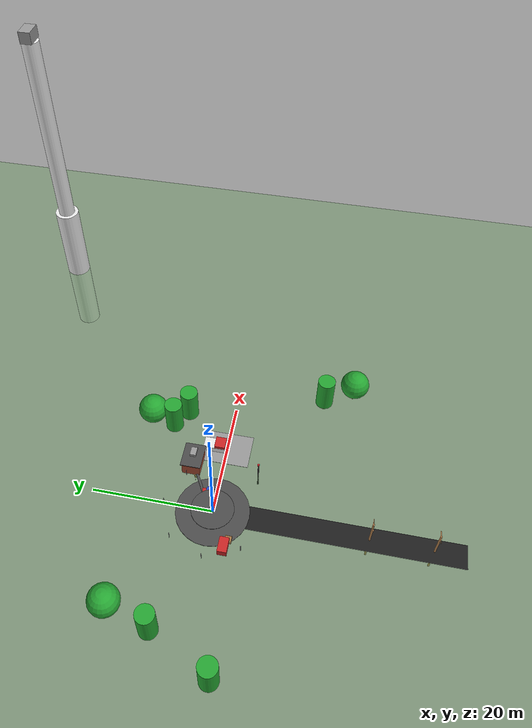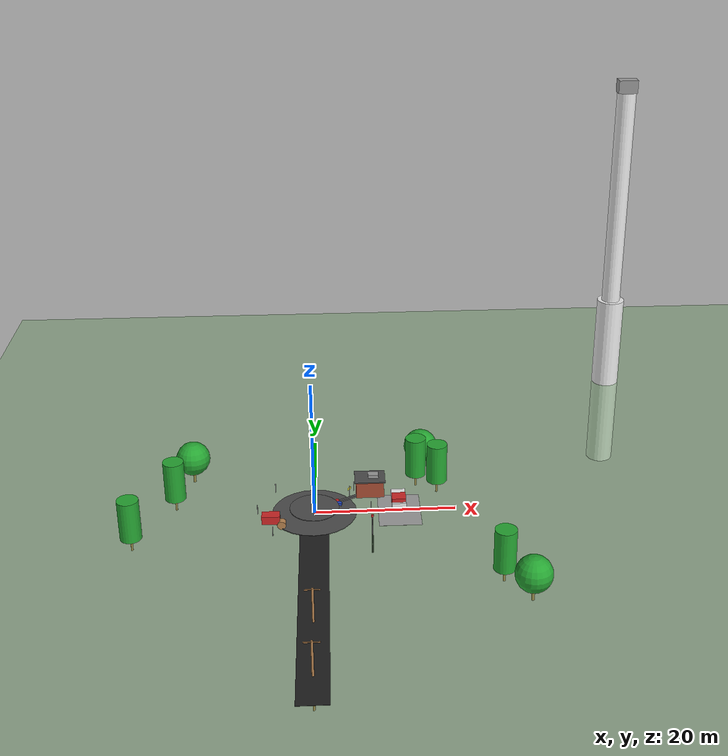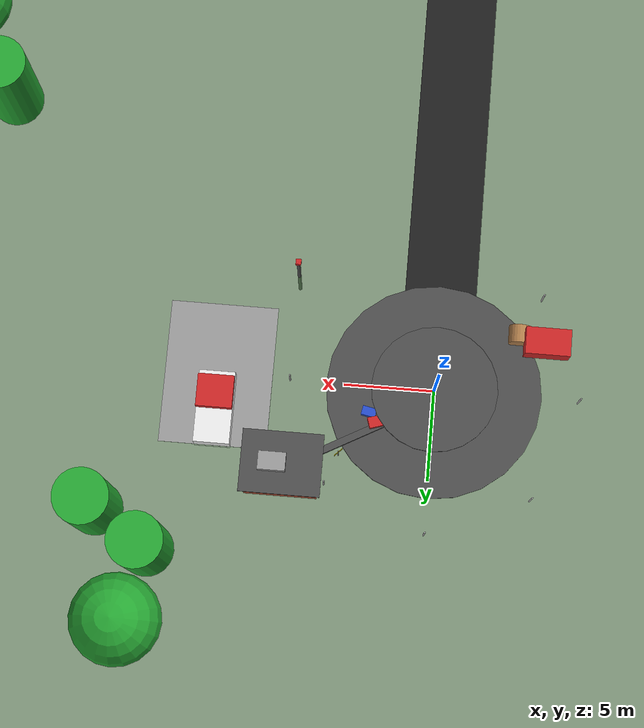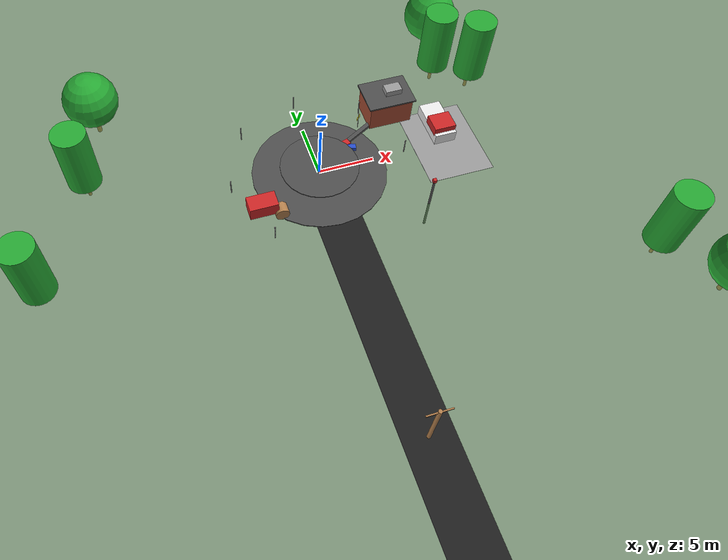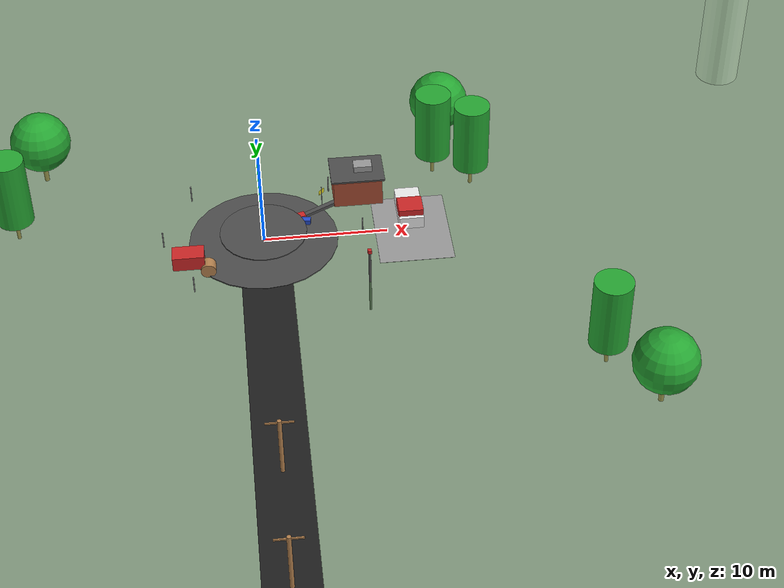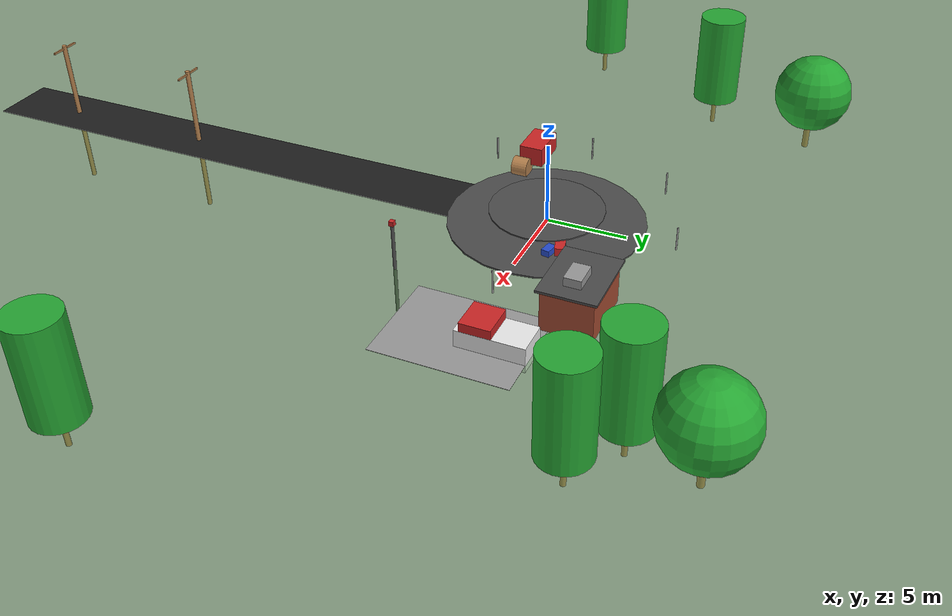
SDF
<sdf version='1.7'>
  <world name='default'>
    <light name='sun' type='directional'>
      <cast_shadows>1</cast_shadows>
      <pose>0 0 1000 0 -0 0</pose>
      <diffuse>0.8 0.8 0.8 1</diffuse>
      <specular>0.5 0.5 0.5 1</specular>
      <attenuation>
        <range>1000</range>
        <constant>0.9</constant>
        <linear>0.01</linear>
        <quadratic>0.001</quadratic>
      </attenuation>
      <direction>-0.5 0.1 -0.9</direction>
    </light>

    <!-- ============ BASE GROUND ============ -->
    <model name='ground_plane'>
      <static>1</static>
      <link name='link'>
        <collision name='collision'>
          <geometry><plane><normal>0 0 1</normal><size>200 200</size></plane></geometry>
          <surface>
            <friction><ode><mu>100</mu><mu2>50</mu2></ode></friction>
            <contact><ode/></contact>
          </surface>
          <max_contacts>10</max_contacts>
        </collision>
        <visual name='visual'>
          <cast_shadows>0</cast_shadows>
          <geometry><plane><normal>0 0 1</normal><size>200 200</size></plane></geometry>
          <material>
            <script><uri>file://media/materials/scripts/gazebo.material</uri><name>Gazebo/Grass</name></script>
          </material>
        </visual>
      </link>
    </model>

    <!-- ============ CONCRETE FOUNDATION PAD ============ -->
    <model name='concrete_foundation'>
      <static>1</static>
      <pose>0 0 0.005 0 0 0</pose>
      <link name='pad'>
        <collision name='c'><geometry><cylinder><radius>6</radius><length>0.1</length></cylinder></geometry></collision>
        <visual name='v'><geometry><cylinder><radius>6</radius><length>0.1</length></cylinder></geometry><material><script><uri>file://media/materials/scripts/gazebo.material</uri><name>Gazebo/DarkGrey</name></script></material></visual>
      </link>
    </model>

    <!-- ============ MAINTENANCE PLATFORM (raised steel grating around tower base) ============ -->
    <model name='maintenance_platform'>
      <static>1</static>
      <pose>0 0 0.8 0 0 0</pose>
      <link name='deck'>
        <collision name='c'><geometry><cylinder><radius>3.5</radius><length>0.08</length></cylinder></geometry></collision>
        <visual name='v'><geometry><cylinder><radius>3.5</radius><length>0.08</length></cylinder></geometry><material><script><uri>file://media/materials/scripts/gazebo.material</uri><name>Gazebo/DarkGrey</name></script></material></visual>
      </link>
    </model>

    <!-- ============ ACCESS ROAD (south) ============ -->
    <model name='access_road'>
      <static>1</static>
      <pose>0 -20 0.003 0 0 0</pose>
      <link name='road'>
        <collision name='collision'>
          <geometry><box><size>4 40 0.05</size></box></geometry>
        </collision>
        <visual name='visual'>
          <geometry><box><size>4 40 0.05</size></box></geometry>
          <material>
            <script><uri>file://media/materials/scripts/gazebo.material</uri><name>Gazebo/FlatBlack</name></script>
          </material>
        </visual>
      </link>
    </model>

    <!-- Road dashed center lines -->
    <model name='road_marking_1'>
      <static>1</static>
      <pose>0 -5 0.008 0 0 0</pose>
      <link name='m'><visual name='v'><geometry><box><size>0.15 3 0.01</size></box></geometry><material><script><uri>file://media/materials/scripts/gazebo.material</uri><name>Gazebo/Yellow</name></script></material></visual></link>
    </model>
    <model name='road_marking_2'>
      <static>1</static>
      <pose>0 -15 0.008 0 0 0</pose>
      <link name='m'><visual name='v'><geometry><box><size>0.15 3 0.01</size></box></geometry><material><script><uri>file://media/materials/scripts/gazebo.material</uri><name>Gazebo/Yellow</name></script></material></visual></link>
    </model>
    <model name='road_marking_3'>
      <static>1</static>
      <pose>0 -30 0.008 0 0 0</pose>
      <link name='m'><visual name='v'><geometry><box><size>0.15 3 0.01</size></box></geometry><material><script><uri>file://media/materials/scripts/gazebo.material</uri><name>Gazebo/Yellow</name></script></material></visual></link>
    </model>

    <!-- ============ TRANSFORMER BUILDING (northeast) ============ -->
    <model name='transformer_building'>
      <static>1</static>
      <pose>8 5 1.25 0 0 0</pose>
      <link name='body'>
        <collision name='c'><geometry><box><size>4 3 2.5</size></box></geometry></collision>
        <visual name='v'><geometry><box><size>4 3 2.5</size></box></geometry><material><script><uri>file://media/materials/scripts/gazebo.material</uri><name>Gazebo/Bricks</name></script></material></visual>
      </link>
    </model>
    <model name='transformer_roof'>
      <static>1</static>
      <pose>8 5 2.55 0 0 0</pose>
      <link name='r'>
        <collision name='c'><geometry><box><size>4.4 3.4 0.15</size></box></geometry></collision>
        <visual name='v'><geometry><box><size>4.4 3.4 0.15</size></box></geometry><material><script><uri>file://media/materials/scripts/gazebo.material</uri><name>Gazebo/DarkGrey</name></script></material></visual>
      </link>
    </model>
    <model name='transformer_hvac'>
      <static>1</static>
      <pose>8.5 5 2.85 0 0 0</pose>
      <link name='h'>
        <collision name='c'><geometry><box><size>1.5 1 0.6</size></box></geometry></collision>
        <visual name='v'><geometry><box><size>1.5 1 0.6</size></box></geometry><material><script><uri>file://media/materials/scripts/gazebo.material</uri><name>Gazebo/Grey</name></script></material></visual>
      </link>
    </model>

    <!-- Cable conduit from transformer to tower -->
    <model name='cable_conduit'>
      <static>1</static>
      <pose>3.5 2.5 0.15 0 0 0.5</pose>
      <link name='c'>
        <collision name='c'><geometry><box><size>6 0.4 0.3</size></box></geometry></collision>
        <visual name='v'><geometry><box><size>6 0.4 0.3</size></box></geometry><material><script><uri>file://media/materials/scripts/gazebo.material</uri><name>Gazebo/DarkGrey</name></script></material></visual>
      </link>
    </model>

    <!-- ============ PERIMETER FENCE ============ -->
    <model name='fence_post_1'>
      <static>1</static><pose>8 0 0.75 0 0 0</pose>
      <link name='p'><collision name='c'><geometry><cylinder><radius>0.05</radius><length>1.5</length></cylinder></geometry></collision><visual name='v'><geometry><cylinder><radius>0.05</radius><length>1.5</length></cylinder></geometry><material><script><uri>file://media/materials/scripts/gazebo.material</uri><name>Gazebo/Grey</name></script></material></visual></link>
    </model>
    <model name='fence_post_2'>
      <static>1</static><pose>5.66 5.66 0.75 0 0 0</pose>
      <link name='p'><collision name='c'><geometry><cylinder><radius>0.05</radius><length>1.5</length></cylinder></geometry></collision><visual name='v'><geometry><cylinder><radius>0.05</radius><length>1.5</length></cylinder></geometry><material><script><uri>file://media/materials/scripts/gazebo.material</uri><name>Gazebo/Grey</name></script></material></visual></link>
    </model>
    <model name='fence_post_3'>
      <static>1</static><pose>0 8 0.75 0 0 0</pose>
      <link name='p'><collision name='c'><geometry><cylinder><radius>0.05</radius><length>1.5</length></cylinder></geometry></collision><visual name='v'><geometry><cylinder><radius>0.05</radius><length>1.5</length></cylinder></geometry><material><script><uri>file://media/materials/scripts/gazebo.material</uri><name>Gazebo/Grey</name></script></material></visual></link>
    </model>
    <model name='fence_post_4'>
      <static>1</static><pose>-5.66 5.66 0.75 0 0 0</pose>
      <link name='p'><collision name='c'><geometry><cylinder><radius>0.05</radius><length>1.5</length></cylinder></geometry></collision><visual name='v'><geometry><cylinder><radius>0.05</radius><length>1.5</length></cylinder></geometry><material><script><uri>file://media/materials/scripts/gazebo.material</uri><name>Gazebo/Grey</name></script></material></visual></link>
    </model>
    <model name='fence_post_5'>
      <static>1</static><pose>-8 0 0.75 0 0 0</pose>
      <link name='p'><collision name='c'><geometry><cylinder><radius>0.05</radius><length>1.5</length></cylinder></geometry></collision><visual name='v'><geometry><cylinder><radius>0.05</radius><length>1.5</length></cylinder></geometry><material><script><uri>file://media/materials/scripts/gazebo.material</uri><name>Gazebo/Grey</name></script></material></visual></link>
    </model>
    <model name='fence_post_6'>
      <static>1</static><pose>-5.66 -5.66 0.75 0 0 0</pose>
      <link name='p'><collision name='c'><geometry><cylinder><radius>0.05</radius><length>1.5</length></cylinder></geometry></collision><visual name='v'><geometry><cylinder><radius>0.05</radius><length>1.5</length></cylinder></geometry><material><script><uri>file://media/materials/scripts/gazebo.material</uri><name>Gazebo/Grey</name></script></material></visual></link>
    </model>

    <!-- ============ WARNING SIGN ============ -->
    <model name='warning_sign'>
      <static>1</static>
      <pose>5 4 0.9 0 0 0.785</pose>
      <link name='post'>
        <collision name='c'><geometry><cylinder><radius>0.03</radius><length>1.8</length></cylinder></geometry></collision>
        <visual name='v'><geometry><cylinder><radius>0.03</radius><length>1.8</length></cylinder></geometry><material><script><uri>file://media/materials/scripts/gazebo.material</uri><name>Gazebo/Grey</name></script></material></visual>
      </link>
      <link name='board'>
        <pose>0 0 0.4 0 0 0</pose>
        <collision name='c'><geometry><box><size>0.6 0.02 0.4</size></box></geometry></collision>
        <visual name='v'><geometry><box><size>0.6 0.02 0.4</size></box></geometry><material><script><uri>file://media/materials/scripts/gazebo.material</uri><name>Gazebo/Yellow</name></script></material></visual>
      </link>
    </model>

    <!-- ============ STORAGE CONTAINER (northwest) ============ -->
    <model name='storage_container'>
      <static>1</static>
      <pose>-6 -3 1.2 0 0 0</pose>
      <link name='box'>
        <collision name='c'><geometry><box><size>2.5 1.5 1.2</size></box></geometry></collision>
        <visual name='v'><geometry><box><size>2.5 1.5 1.2</size></box></geometry><material><script><uri>file://media/materials/scripts/gazebo.material</uri><name>Gazebo/Red</name></script></material></visual>
      </link>
    </model>
    <model name='cable_spool'>
      <static>1</static>
      <pose>-4.5 -3.5 0.5 1.57 0 0</pose>
      <link name='s'>
        <collision name='c'><geometry><cylinder><radius>0.6</radius><length>1.0</length></cylinder></geometry></collision>
        <visual name='v'><geometry><cylinder><radius>0.6</radius><length>1.0</length></cylinder></geometry><material><script><uri>file://media/materials/scripts/gazebo.material</uri><name>Gazebo/Wood</name></script></material></visual>
      </link>
    </model>

    <!-- ============ PARKING AREA + VEHICLE (east) ============ -->
    <model name='parking_area'>
      <static>1</static>
      <pose>12 0 0.002 0 0 0</pose>
      <link name='gravel'>
        <visual name='v'><geometry><box><size>6 8 0.02</size></box></geometry><material><script><uri>file://media/materials/scripts/gazebo.material</uri><name>Gazebo/Grey</name></script></material></visual>
      </link>
    </model>

    <!-- Simplified truck (inline box geometry, no network download) -->
    <model name='maintenance_truck'>
      <static>1</static>
      <pose>12 2 0.3 0 0 -1.57</pose>
      <link name='body'>
        <collision name='c'><geometry><box><size>4 2 1.5</size></box></geometry></collision>
        <visual name='v'><geometry><box><size>4 2 1.5</size></box></geometry><material><script><uri>file://media/materials/scripts/gazebo.material</uri><name>Gazebo/White</name></script></material></visual>
      </link>
      <link name='cab'>
        <pose>0.8 0 0.9 0 0 0</pose>
        <collision name='c'><geometry><box><size>1.8 2 0.8</size></box></geometry></collision>
        <visual name='v'><geometry><box><size>1.8 2 0.8</size></box></geometry><material><script><uri>file://media/materials/scripts/gazebo.material</uri><name>Gazebo/Red</name></script></material></visual>
      </link>
    </model>

    <!-- ============ TOOLBOXES ============ -->
    <model name='toolbox_1'>
      <static>1</static>
      <pose>3 2 0.4 0 0 0.3</pose>
      <link name='b'><collision name='c'><geometry><box><size>1.0 0.6 0.5</size></box></geometry></collision><visual name='v'><geometry><box><size>1.0 0.6 0.5</size></box></geometry><material><script><uri>file://media/materials/scripts/gazebo.material</uri><name>Gazebo/Red</name></script></material></visual></link>
    </model>
    <model name='toolbox_2'>
      <static>1</static>
      <pose>3.5 1.5 0.4 0 0 -0.2</pose>
      <link name='b'><collision name='c'><geometry><box><size>0.8 0.5 0.4</size></box></geometry></collision><visual name='v'><geometry><box><size>0.8 0.5 0.4</size></box></geometry><material><script><uri>file://media/materials/scripts/gazebo.material</uri><name>Gazebo/Blue</name></script></material></visual></link>
    </model>

    <!-- ============ WARNING LIGHT POLE (southeast) ============ -->
    <model name='warning_light_pole'>
      <static>1</static>
      <pose>8 -6 0 0 0 0</pose>
      <link name='pole'>
        <collision name='c'><geometry><cylinder><radius>0.1</radius><length>6</length></cylinder></geometry></collision>
        <visual name='v'><geometry><cylinder><radius>0.1</radius><length>6</length></cylinder></geometry><material><script><uri>file://media/materials/scripts/gazebo.material</uri><name>Gazebo/DarkGrey</name></script></material></visual>
      </link>
      <link name='light'>
        <pose>0 0 3 0 0 0</pose>
        <collision name='c'><geometry><box><size>0.3 0.3 0.3</size></box></geometry></collision>
        <visual name='v'><geometry><box><size>0.3 0.3 0.3</size></box></geometry><material><script><uri>file://media/materials/scripts/gazebo.material</uri><name>Gazebo/Red</name></script></material></visual>
      </link>
    </model>

    <!-- ============ SECOND WIND TURBINE (southeast, ~64m) ============ -->
    <model name='turbine2_tower_base'>
      <static>1</static><pose>50 40 0 0 0 0</pose>
      <link name='t'><collision name='c'><geometry><cylinder><radius>2.2</radius><length>30</length></cylinder></geometry></collision><visual name='v'><geometry><cylinder><radius>2.2</radius><length>30</length></cylinder></geometry><material><script><uri>file://media/materials/scripts/gazebo.material</uri><name>Gazebo/White</name></script></material></visual></link>
    </model>
    <model name='turbine2_tower_top'>
      <static>1</static><pose>50 40 30 0 0 0</pose>
      <link name='t'><collision name='c'><geometry><cylinder><radius>1.5</radius><length>40</length></cylinder></geometry></collision><visual name='v'><geometry><cylinder><radius>1.5</radius><length>40</length></cylinder></geometry><material><script><uri>file://media/materials/scripts/gazebo.material</uri><name>Gazebo/White</name></script></material></visual></link>
    </model>
    <model name='turbine2_nacelle'>
      <static>1</static><pose>50 40 51 0 0 0</pose>
      <link name='n'><collision name='c'><geometry><box><size>3 2 2</size></box></geometry></collision><visual name='v'><geometry><box><size>3 2 2</size></box></geometry><material><script><uri>file://media/materials/scripts/gazebo.material</uri><name>Gazebo/Grey</name></script></material></visual></link>
    </model>
    <model name='turbine2_warning_light'>
      <static>1</static><pose>50 41 51 0 0 0</pose>
      <link name='l'><collision name='c'><geometry><box><size>0.3 0.2 0.3</size></box></geometry></collision><visual name='v'><geometry><box><size>0.3 0.2 0.3</size></box></geometry><material><script><uri>file://media/materials/scripts/gazebo.material</uri><name>Gazebo/Red</name></script></material></visual></link>
    </model>

    <!-- ============ TREES (inline geometry, no network download) ============ -->
    <!-- Pine tree = brown cylinder trunk + green cone canopy -->
    <model name='tree_ne_1'>
      <static>1</static><pose>15 10 0 0 0 0</pose>
      <link name='trunk'><collision name='c'><geometry><cylinder><radius>0.15</radius><length>4</length></cylinder></geometry></collision><visual name='v'><geometry><cylinder><radius>0.15</radius><length>4</length></cylinder></geometry><material><script><uri>file://media/materials/scripts/gazebo.material</uri><name>Gazebo/Wood</name></script></material></visual></link>
      <link name='canopy'><pose>0 0 3 0 0 0</pose><collision name='c'><geometry><cylinder><radius>1.5</radius><length>6</length></cylinder></geometry></collision><visual name='v'><geometry><cylinder><radius>1.5</radius><length>6</length></cylinder></geometry><material><script><uri>file://media/materials/scripts/gazebo.material</uri><name>Gazebo/Green</name></script></material></visual></link>
    </model>
    <model name='tree_ne_2'>
      <static>1</static><pose>18 8 0 0 0 0</pose>
      <link name='trunk'><collision name='c'><geometry><cylinder><radius>0.15</radius><length>4</length></cylinder></geometry></collision><visual name='v'><geometry><cylinder><radius>0.15</radius><length>4</length></cylinder></geometry><material><script><uri>file://media/materials/scripts/gazebo.material</uri><name>Gazebo/Wood</name></script></material></visual></link>
      <link name='canopy'><pose>0 0 3 0 0 0</pose><collision name='c'><geometry><cylinder><radius>1.5</radius><length>6</length></cylinder></geometry></collision><visual name='v'><geometry><cylinder><radius>1.5</radius><length>6</length></cylinder></geometry><material><script><uri>file://media/materials/scripts/gazebo.material</uri><name>Gazebo/Green</name></script></material></visual></link>
    </model>
    <!-- Oak tree = thicker trunk + sphere canopy -->
    <model name='tree_ne_3'>
      <static>1</static><pose>16 14 0 0 0 0</pose>
      <link name='trunk'><collision name='c'><geometry><cylinder><radius>0.2</radius><length>3</length></cylinder></geometry></collision><visual name='v'><geometry><cylinder><radius>0.2</radius><length>3</length></cylinder></geometry><material><script><uri>file://media/materials/scripts/gazebo.material</uri><name>Gazebo/Wood</name></script></material></visual></link>
      <link name='canopy'><pose>0 0 2.5 0 0 0</pose><collision name='c'><geometry><sphere><radius>2.5</radius></sphere></geometry></collision><visual name='v'><geometry><sphere><radius>2.5</radius></sphere></geometry><material><script><uri>file://media/materials/scripts/gazebo.material</uri><name>Gazebo/Green</name></script></material></visual></link>
    </model>
    <model name='tree_nw_1'>
      <static>1</static><pose>-20 5 0 0 0 0</pose>
      <link name='trunk'><collision name='c'><geometry><cylinder><radius>0.15</radius><length>4</length></cylinder></geometry></collision><visual name='v'><geometry><cylinder><radius>0.15</radius><length>4</length></cylinder></geometry><material><script><uri>file://media/materials/scripts/gazebo.material</uri><name>Gazebo/Wood</name></script></material></visual></link>
      <link name='canopy'><pose>0 0 3 0 0 0</pose><collision name='c'><geometry><cylinder><radius>1.5</radius><length>6</length></cylinder></geometry></collision><visual name='v'><geometry><cylinder><radius>1.5</radius><length>6</length></cylinder></geometry><material><script><uri>file://media/materials/scripts/gazebo.material</uri><name>Gazebo/Green</name></script></material></visual></link>
    </model>
    <model name='tree_nw_2'>
      <static>1</static><pose>-18 12 0 0 0 0</pose>
      <link name='trunk'><collision name='c'><geometry><cylinder><radius>0.2</radius><length>3</length></cylinder></geometry></collision><visual name='v'><geometry><cylinder><radius>0.2</radius><length>3</length></cylinder></geometry><material><script><uri>file://media/materials/scripts/gazebo.material</uri><name>Gazebo/Wood</name></script></material></visual></link>
      <link name='canopy'><pose>0 0 2.5 0 0 0</pose><collision name='c'><geometry><sphere><radius>2.5</radius></sphere></geometry></collision><visual name='v'><geometry><sphere><radius>2.5</radius></sphere></geometry><material><script><uri>file://media/materials/scripts/gazebo.material</uri><name>Gazebo/Green</name></script></material></visual></link>
    </model>
    <model name='tree_west'>
      <static>1</static><pose>-25 -5 0 0 0 0</pose>
      <link name='trunk'><collision name='c'><geometry><cylinder><radius>0.15</radius><length>4</length></cylinder></geometry></collision><visual name='v'><geometry><cylinder><radius>0.15</radius><length>4</length></cylinder></geometry><material><script><uri>file://media/materials/scripts/gazebo.material</uri><name>Gazebo/Wood</name></script></material></visual></link>
      <link name='canopy'><pose>0 0 3 0 0 0</pose><collision name='c'><geometry><cylinder><radius>1.5</radius><length>6</length></cylinder></geometry></collision><visual name='v'><geometry><cylinder><radius>1.5</radius><length>6</length></cylinder></geometry><material><script><uri>file://media/materials/scripts/gazebo.material</uri><name>Gazebo/Green</name></script></material></visual></link>
    </model>
    <model name='tree_se_1'>
      <static>1</static><pose>25 -15 0 0 0 0</pose>
      <link name='trunk'><collision name='c'><geometry><cylinder><radius>0.15</radius><length>4</length></cylinder></geometry></collision><visual name='v'><geometry><cylinder><radius>0.15</radius><length>4</length></cylinder></geometry><material><script><uri>file://media/materials/scripts/gazebo.material</uri><name>Gazebo/Wood</name></script></material></visual></link>
      <link name='canopy'><pose>0 0 3 0 0 0</pose><collision name='c'><geometry><cylinder><radius>1.5</radius><length>6</length></cylinder></geometry></collision><visual name='v'><geometry><cylinder><radius>1.5</radius><length>6</length></cylinder></geometry><material><script><uri>file://media/materials/scripts/gazebo.material</uri><name>Gazebo/Green</name></script></material></visual></link>
    </model>
    <model name='tree_se_2'>
      <static>1</static><pose>28 -20 0 0 0 0</pose>
      <link name='trunk'><collision name='c'><geometry><cylinder><radius>0.2</radius><length>3</length></cylinder></geometry></collision><visual name='v'><geometry><cylinder><radius>0.2</radius><length>3</length></cylinder></geometry><material><script><uri>file://media/materials/scripts/gazebo.material</uri><name>Gazebo/Wood</name></script></material></visual></link>
      <link name='canopy'><pose>0 0 2.5 0 0 0</pose><collision name='c'><geometry><sphere><radius>2.5</radius></sphere></geometry></collision><visual name='v'><geometry><sphere><radius>2.5</radius></sphere></geometry><material><script><uri>file://media/materials/scripts/gazebo.material</uri><name>Gazebo/Green</name></script></material></visual></link>
    </model>

    <!-- ============ UTILITY POLES ALONG ROAD ============ -->
    <model name='utility_pole_1'>
      <static>1</static><pose>0 -25 0 0 0 0</pose>
      <link name='pole'><collision name='c'><geometry><cylinder><radius>0.15</radius><length>10</length></cylinder></geometry></collision><visual name='v'><geometry><cylinder><radius>0.15</radius><length>10</length></cylinder></geometry><material><script><uri>file://media/materials/scripts/gazebo.material</uri><name>Gazebo/Wood</name></script></material></visual></link>
      <link name='cross'><pose>0 0 4.8 0 0 0</pose><collision name='c'><geometry><box><size>2 0.1 0.12</size></box></geometry></collision><visual name='v'><geometry><box><size>2 0.1 0.12</size></box></geometry><material><script><uri>file://media/materials/scripts/gazebo.material</uri><name>Gazebo/Wood</name></script></material></visual></link>
    </model>
    <model name='utility_pole_2'>
      <static>1</static><pose>0 -35 0 0 0 0</pose>
      <link name='pole'><collision name='c'><geometry><cylinder><radius>0.15</radius><length>10</length></cylinder></geometry></collision><visual name='v'><geometry><cylinder><radius>0.15</radius><length>10</length></cylinder></geometry><material><script><uri>file://media/materials/scripts/gazebo.material</uri><name>Gazebo/Wood</name></script></material></visual></link>
      <link name='cross'><pose>0 0 4.8 0 0 0</pose><collision name='c'><geometry><box><size>2 0.1 0.12</size></box></geometry></collision><visual name='v'><geometry><box><size>2 0.1 0.12</size></box></geometry><material><script><uri>file://media/materials/scripts/gazebo.material</uri><name>Gazebo/Wood</name></script></material></visual></link>
    </model>

    <!-- ============ PHYSICS ============ -->
    <gravity>0 0 -9.8</gravity>
    <magnetic_field>6e-06 2.3e-05 -4.2e-05</magnetic_field>
    <atmosphere type='adiabatic'/>

    <physics type='ode'>
      <max_step_size>0.001</max_step_size>
      <real_time_factor>1</real_time_factor>
      <real_time_update_rate>1000</real_time_update_rate>
    </physics>

    <scene>
      <ambient>0.6 0.6 0.6 1</ambient>
      <background>0.7 0.7 0.7 1</background>
      <shadows>1</shadows>
    </scene>

    <wind>
      <linear_velocity>5 2 0</linear_velocity>
    </wind>

    <spherical_coordinates>
      <surface_model>EARTH_WGS84</surface_model>
      <latitude_deg>0</latitude_deg>
      <longitude_deg>0</longitude_deg>
      <elevation>0</elevation>
      <heading_deg>0</heading_deg>
    </spherical_coordinates>
  </world>
</sdf>
